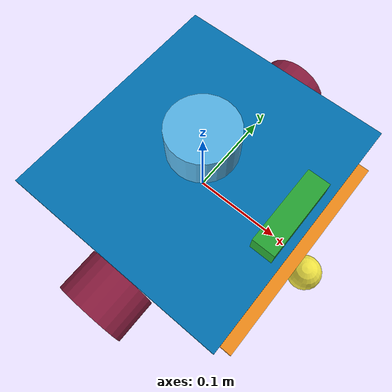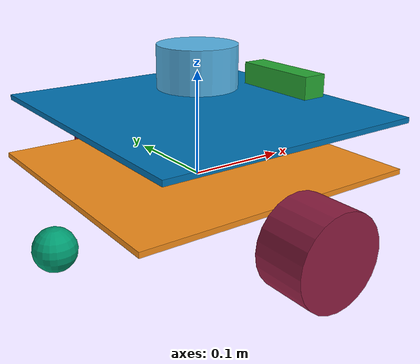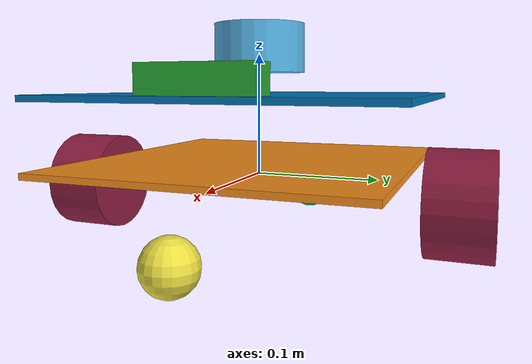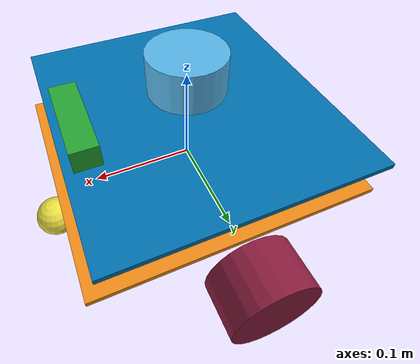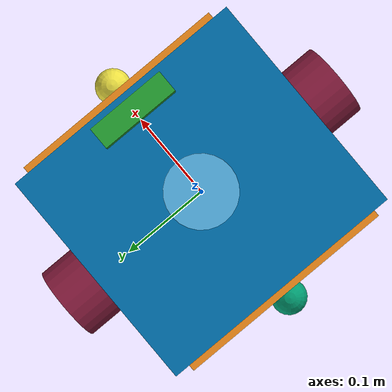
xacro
<?xml version="1.0"?>
<robot name="furiguide_diff_robot" xmlns:xacro="http://www.ros.org/wiki/xacro">

<xacro:include filename="$(find furiguide_description)/urdf/materials.xacro" />

<!-- Properties (MKS) -->
<xacro:property name="M_PI" value="3.1415926535897931"/>
<xacro:property name="base_height" value="0.005"/>

<xacro:property name="base_length" value="0.255" />
<xacro:property name="base_width" value="0.28" />
<xacro:property name="base_radius" value="0.15" />
<xacro:property name="base_mass" value="10" />
<xacro:property name="base_separation" value="0.065" />

<xacro:property name="caster_height" value="0.04725" />
<xacro:property name="caster_radius" value="0.020" />
<xacro:property name="caster_offset" value="0.115" />1
<xacro:property name="caster_mass" value="0.5" />

<xacro:property name="wheel_mass" value="1.0" />
<xacro:property name="wheel_height" value="0.05" />
<xacro:property name="wheel_radius" value="0.0425" />
<xacro:property name="wheel_separation" value="0.325" />

<xacro:property name="base_x_origin_to_wheel_origin" value="0.0" />
<xacro:property name="base_y_origin_to_wheel_origin" value="${wheel_separation / 2}" />
<xacro:property name="base_z_origin_to_wheel_origin" value="-0.025" />

<!-- Sensor Dimensions -->
<xacro:property name="lidar_base_separation" value="0.015" />
<xacro:property name="lidar_height" value="0.04" />
<xacro:property name="lidar_radius" value="0.0375" />

<!-- Cylinder Inertia Macro (source: Kaustav5422) -->
<xacro:macro name="cylinder_inertia" params="m r h">
  <inertia  ixx="${m*(3*r*r+h*h)/12}" ixy = "0" ixz = "0"
            iyy="${m*(3*r*r+h*h)/12}" iyz = "0"
            izz="${m*r*r/2}" />
</xacro:macro>

<!-- Caster -->
<xacro:macro name="caster" params="fb translateX:=0">
  <link name="${fb}_caster">

    <inertial>
      <mass value="${wheel_mass}"/>
      <origin xyz="0 0 0" />
      <inertia
        ixx="0.001" ixy="0" ixz="0"
        iyy="0.001" iyz="0"
        izz="0.001"
      />
    </inertial>

    <collision name="${fb}_caster_collision">
      <origin xyz="0 0 0" rpy="0 0 0"/>
      <geometry>
        <sphere radius="${caster_radius}"/>
      </geometry>
      <surface>
        <friction>
          <ode>
            <mu>0</mu>
            <mu2>0</mu2>
            <slip1>1.0</slip1>
            <slip2>1.0</slip2>
          </ode>
        </friction>
      </surface>
    </collision>

    <visual name="${fb}_caster_visual">
      <origin xyz="0 0 0" rpy="0 0 0"/>
      <geometry>
        <sphere radius="${caster_radius}"/>
      </geometry>
    </visual>
  </link>

  <joint name="${fb}_caster_fixed" type="fixed">
    <origin xyz="${translateX} 0 -${caster_height}" rpy="0 0 0"/>
    <parent link="chassis" />
    <child link="${fb}_caster" />
  </joint>
</xacro:macro>

<link name="base_link"/>

<joint name="base_joint" type="fixed">
  <origin xyz="0 0 0.0102" rpy="0 0 0" />
  <parent link="base_link"/>
  <child link="chassis" />
</joint>

<link name="chassis">
  <pose>0 0 0.1 0 0 0</pose>

  <inertial>
    <mass value="${base_mass*0.75}"/>
    <origin xyz="0.0 0 0.1" rpy="0 0 0"/>
    <inertia
      ixx="0.1" ixy="0" ixz="0"
      iyy="0.1" iyz="0"
      izz="0.1"
    />
  </inertial>

  <collision name="collision">
    <origin xyz="0 0 0" rpy="0 0 0"/>
    <geometry>
      <box size="${base_width} ${base_length} ${base_height}" />
    </geometry>
  </collision>

  <visual name="chassis_visual">
    <origin xyz="0 0 0" rpy="0 0 0"/>
    <geometry>
      <box size="${base_width} ${base_length} ${base_height}" />
    </geometry>
  </visual>
</link>

<caster fb="front" translateX="-0.15" />
<caster fb="rear" translateX="0.15" />

<joint name="upper_joint" type="fixed">
  <origin xyz="0 0 ${base_separation}" rpy="0 0 0" />
  <parent link="base_link" />
  <child link="upper_chassis" />
</joint>

<link name="upper_chassis">
  <pose>0 0 0.0 0 0 0</pose>

  <inertial>
    <mass value="${base_mass*0.25}"/>
    <origin xyz="0.0 0 0.0" rpy="0 0 0"/>
    <inertia
      ixx="0.1" ixy="0" ixz="0"
      iyy="0.1" iyz="0"
      izz="0.1"
    />
  </inertial>

  <collision name="collision">
    <geometry>
      <box size="${base_length} ${base_width} ${base_height}" />
    </geometry>
  </collision>

  <visual name="chassis_visual">
    <origin xyz="0 0 0" rpy="0 0 0"/>
    <geometry>
      <box size="${base_length} ${base_width} ${base_height}" />
    </geometry>
  </visual>
</link>

<!-- Wheels -->
<xacro:macro name="wheel" params="lr parent translateX:=0.0 translateY:=0.0">
  <link name="${lr}_wheel">
    <inertial>
      <mass value="${wheel_mass}"/>
      <origin xyz="0 0 0" />
      <cylinder_inertia m="${wheel_mass}" r="${wheel_radius}" h="${wheel_height}" />

    </inertial>

    <collision name="${lr}_wheel_collision">
      <origin xyz="0 0 0" rpy="${M_PI/2} 0 0"/>
      <geometry>
        <cylinder length="${wheel_height}" radius="${wheel_radius}" />
      </geometry>
    </collision>

    <visual>
      <origin xyz="0 0 0" rpy="${M_PI/2} 0 0"/>
      <geometry>
        <cylinder length="${wheel_height}" radius="${wheel_radius}" />
      </geometry>
      <material name="Maroon" />
    </visual>
  </link>

  <gazebo reference="${lr}_wheel">
    <mu1 value="100.0" />
    <mu2 value="100.0" />
    <kp value="10000000.0" />
    <kd value="1.0" />
    <fdir1 value="1 0 0" />
    <material>Gazebo/Red</material>
  </gazebo>

  <joint type="continuous" name="${lr}_wheel_axle">
    <origin xyz="${translateX * base_x_origin_to_wheel_origin}
                 ${translateY * base_y_origin_to_wheel_origin}
                 ${base_z_origin_to_wheel_origin}"
            rpy="0 0 0" />
    <parent link="${parent}" />
    <child link="${lr}_wheel" />

    <axis xyz="0 1 0" rpy="0 0 0" />
    <limit effort="100" velocity="100" />
    <joint_properties damping="1.0" friction="1.0" />
  </joint>
</xacro:macro>

<wheel lr="left" parent="chassis" translateY="1"/>
<wheel lr="right" parent="chassis" translateY="-1"/>

<!-- Camera -->
<joint name="camera_joint" type="fixed">
  <axis xyz="0 1 0" />
  <origin xyz="${base_length/2 - 0.021} 0 0.0125" rpy="0 0 0" />
  <parent link="upper_chassis" />
  <child link="camera_link" />
</joint>

<link name="camera_link">
  <inertial>
    <mass value="1e-5" />
    <origin xyz="0 0 0" rpy="0 0 0" />
    <inertia ixx="1e-6" ixy="0" ixz="0" iyy="1e-6" iyz="0" izz="1e-6" />
  </inertial>

  <collision>
    <origin xyz="0 0 0" rpy="0 0 ${M_PI/2}" />
    <geometry>
      <box size="0.09 0.025 0.025" />
    </geometry>
  </collision>

  <visual>
    <origin xyz="0 0 0" rpy="0 0 ${M_PI/2}" />
    <geometry>
      <box size="0.09 0.025 0.025" />
    </geometry>
  </visual>
</link>

<!-- generate an optical frame http://www.ros.org/reps/rep-0103.html#suffix-frames
    so that ros and opencv can operate on the camera frame correctly -->
<joint name="camera_optical_joint" type="fixed">
  <!-- these values have to be these values otherwise the gazebo camera image
      won't be aligned properly with the frame it is supposedly originating from -->
  <origin xyz="0 0 0" rpy="-${M_PI/2} 0 -${M_PI/2}"/>
  <parent link="camera_link"/>
  <child link="camera_link_optical"/>
</joint>

<link name="camera_link_optical">
</link>

<!-- Intel Realsense D435 Camera -->
<gazebo reference="camera_link">
  <sensor type="camera" name="camera1">
    <update_rate>60.0</update_rate>
    <camera name="head">
      <!-- 69.4 x 42.5 degrees -->
      <horizontal_fov>1.211258501</horizontal_fov>
      <image>
        <width>1280</width>
        <height>720</height>
        <format>R8G8B8</format>
      </image>
      <clip>
        <near>0.011</near>
        <far>10</far>
      </clip>
      <noise>
        <type>gaussian</type>
        <!-- Noise is sampled independently per pixel on each frame.
             That pixel's noise value is added to each of its color
             channels, which at that point lie in the range [0,1]. -->
        <mean>0.0</mean>
        <stddev>0.007</stddev>
      </noise>
    </camera>
    <plugin name="camera_controller" filename="libgazebo_ros_camera.so">
      <alwaysOn>true</alwaysOn>
      <updateRate>0.0</updateRate>
      <cameraName>camera1</cameraName>
      <imageTopicName>image_raw</imageTopicName>
      <cameraInfoTopicName>camera_info</cameraInfoTopicName>
      <frameName>camera_link_optical</frameName>
      <!-- setting hackBaseline to anything but 0.0 will cause a misalignment
      between the gazebo sensor image and the frame it is supposed to
      be attached to -->
      <hackBaseline>0.0</hackBaseline>
      <distortionK1>0.0</distortionK1>
      <distortionK2>0.0</distortionK2>
      <distortionK3>0.0</distortionK3>
      <distortionT1>0.0</distortionT1>
      <distortionT2>0.0</distortionT2>
      <CxPrime>0</CxPrime>
      <Cx>0.0</Cx>
      <Cy>0.0</Cy>
      <focalLength>0.0</focalLength>
    </plugin>
  </sensor>
  <material>Gazebo/Green</material>
</gazebo>

<!-- LiDAR -->
<link name="rplidar_link">
  <inertial>
    <mass value="1e-5" />
    <origin xyz="0 0 0" rpy="0 0 0" />
    <inertia ixx="1e-6" ixy="0" ixz="0" iyy="1e-6" iyz="0" izz="1e-6" />
  </inertial>

  <collision>
    <origin xyz="0 0 0" rpy="0 0 0" />
    <geometry>
      <cylinder length="${lidar_height}" radius="${lidar_radius}"/>
    </geometry>
  </collision>

  <visual>
    <origin xyz="0 0 0" rpy="0 0 0" />
    <geometry>
      <cylinder length="${lidar_height}" radius="${lidar_radius}"/>
    </geometry>
  </visual>
</link>

<joint name="rplidar_joint" type="fixed">
  <origin xyz="0 0 ${lidar_base_separation + lidar_height/2 + base_height}" rpy="0 0 0" />
  <parent link="upper_chassis"/>
  <child link="rplidar_link" />
</joint>

<gazebo reference="rplidar_link">
  <sensor type="gpu_ray" name="head_hokuyo_sensor">
    <pose>0 0 0 0 0 0</pose>
    <visualize>false</visualize>
    <update_rate>10</update_rate>
    <ray>
      <scan>
        <horizontal>
          <samples>4000</samples>
          <resolution>1</resolution>
	  <min_angle>0</min_angle>
	  <max_angle>${M_PI*2}</max_angle>
        </horizontal>
      </scan>
      <range>
        <min>0.15</min>
        <max>12.0</max>
        <resolution>0.01</resolution>
      </range>
      <noise>
        <type>gaussian</type>
        <mean>0.0</mean>
        <stddev>0.01</stddev>
      </noise>
    </ray>
    <plugin name="gazebo_ros_head_hokuyo_controller" filename="libgazebo_ros_gpu_laser.so">
      <topicName>/furiguide/laser/scan</topicName>
      <frameName>rplidar_link</frameName>
    </plugin>
  </sensor>
</gazebo>

<!-- Gazebo Specific Configuration -->
<gazebo>
  <plugin name="differential_drive_controller" filename="libgazebo_ros_diff_drive.so">
    <legacyMode>false</legacyMode>
    <alwaysOn>true</alwaysOn>
    <updateRate>10</updateRate>
    <leftJoint>left_wheel_axle</leftJoint>
    <rightJoint>right_wheel_axle</rightJoint>
    <wheelSeparation>${wheel_separation}</wheelSeparation>
    <wheelDiameter>${wheel_radius * 2}</wheelDiameter>
    <torque>10</torque>
    <commandTopic>cmd_vel</commandTopic>
    <odometryTopic>odom</odometryTopic>
    <odometryFrame>odom</odometryFrame>
    <robotBaseFrame>base_link</robotBaseFrame>
  </plugin>
</gazebo>

<gazebo reference="chassis">
  <material>Gazebo/Orange</material>
</gazebo>

</robot>

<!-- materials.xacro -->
<robot>
  <material name="Maroon">
    <color rgba="${140/255} ${29/255} ${64/255} 1.0"/>
  </material>

  <material name="Gold">
    <color rgba="${255/255} ${198/255} ${39/255} 1.0"/>
  </material>

  <material name="orange">
    <color rgba="${255/255} ${108/255} ${10/255} 1.0"/>
  </material>
</robot>
